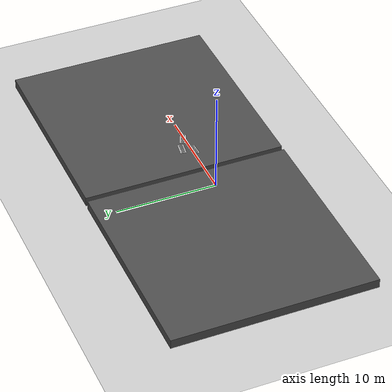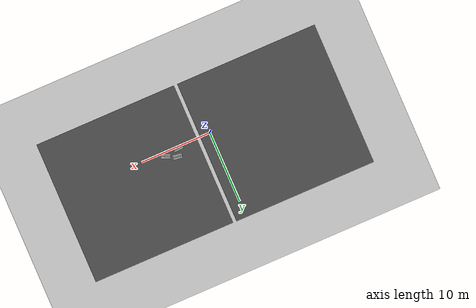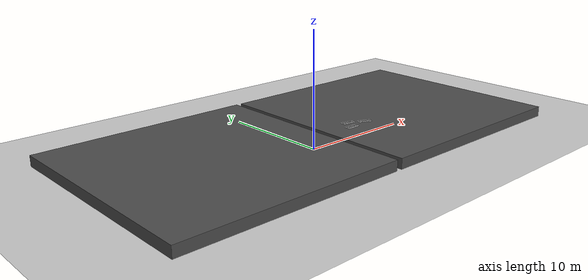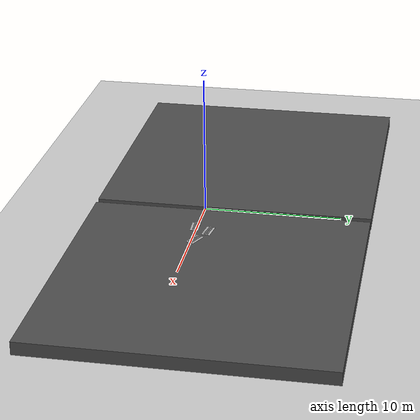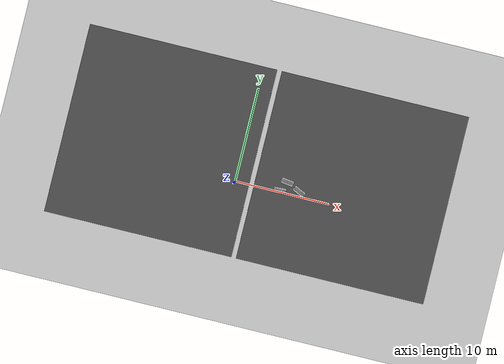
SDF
<sdf version="1.6">
 <world name="default">
  <model name="ground_plane">
   <static>1</static>
   <link name="link">
    <collision name="collision">
     <geometry><plane><normal>0 0 1</normal><size>100 100</size></plane></geometry>
     <surface><friction><ode><mu>100</mu><mu2>50</mu2></ode></friction></surface>
    </collision>
    <visual name="visual">
     <cast_shadows>0</cast_shadows>
     <geometry><plane><normal>0 0 1</normal><size>100 100</size></plane></geometry>
     <material>
      <script><uri>file://media/materials/scripts/gazebo.material</uri><name>Gazebo/Grey</name></script>
     </material>
    </visual>
   </link>
  </model>
  <model name="asphalt_plane">
   <static>1</static>
   <link name="link">
    <collision name="collision">
     <geometry><box><size>20 20 1.4296</size></box></geometry>
     <surface><friction><ode><mu>100</mu><mu2>50</mu2></ode></friction></surface>
    </collision>
    <visual name="visual">
     <cast_shadows>0</cast_shadows>
     <geometry><box><size>20 20 1.4296</size></box></geometry>
     <material>
      <script>
       <uri>model://asphalt_plane/materials/scripts</uri>
       <uri>model://asphalt_plane/materials/textures</uri>
       <name>vrc/asphalt</name>
      </script>
     </material>
    </visual>
   </link>
   <pose>-8.53833 2.29833 0.165376 0 -0 0</pose>
  </model>
  <model name="asphalt_plane_clone">
   <static>1</static>
   <link name="link">
    <collision name="collision">
     <geometry><box><size>20 20 1.06472</size></box></geometry>
     <surface><friction><ode><mu>100</mu><mu2>50</mu2></ode></friction></surface>
    </collision>
    <visual name="visual">
     <cast_shadows>0</cast_shadows>
     <geometry><box><size>20 20 1.06472</size></box></geometry>
     <material>
      <script>
       <uri>model://asphalt_plane/materials/scripts</uri>
       <uri>model://asphalt_plane/materials/textures</uri>
       <name>vrc/asphalt</name>
      </script>
     </material>
    </visual>
   </link>
   <pose>11.9689 2.28539 0.340279 0 -0 0</pose>
  </model>
  <model name="frc2016_roughterrain_1_clone_14">
   <static>0</static>
   <link name="link">
    <visual name="platform">
     <pose>0 0 0.08269 0 -0 0</pose>
     <geometry><box><size>1.27 0.5969 0.003175</size></box></geometry>
    </visual>
    <collision name="platform">
     <pose>0 0 0.08269 0 -0 0</pose>
     <geometry><box><size>1.27 0.5969 0.003175</size></box></geometry>
    </collision>
    <visual name="row1_block1_sm">
     <pose>0.51435 0.1143 0.09698 0 -0 0</pose>
     <geometry><box><size>0.0762 0.0762 0.0254</size></box></geometry>
    </visual>
    <collision name="row1_block1_sm">
     <pose>0.51435 0.1143 0.09698 0 -0 0</pose>
     <geometry><box><size>0.0762 0.0762 0.0254</size></box></geometry>
    </collision>
    <visual name="row1_block2_lg">
     <pose>0.40005 0.1143 0.12238 0 -0 0</pose>
     <geometry><box><size>0.0762 0.0762 0.0762</size></box></geometry>
    </visual>
    <collision name="row1_block2_lg">
     <pose>0.40005 0.1143 0.12238 0 -0 0</pose>
     <geometry><box><size>0.0762 0.0762 0.0762</size></box></geometry>
    </collision>
    <visual name="row1_block3_md">
     <pose>0.28575 0.1143 0.10968 0 -0 0</pose>
     <geometry><box><size>0.0762 0.0762 0.0508</size></box></geometry>
    </visual>
    <collision name="row1_block3_md">
     <pose>0.28575 0.1143 0.10968 0 -0 0</pose>
     <geometry><box><size>0.0762 0.0762 0.0508</size></box></geometry>
    </collision>
    <visual name="row1_block4_sm">
     <pose>0.17145 0.1143 0.09698 0 -0 0</pose>
     <geometry><box><size>0.0762 0.0762 0.0254</size></box></geometry>
    </visual>
    <collision name="row1_block4_sm">
     <pose>0.17145 0.1143 0.09698 0 -0 0</pose>
     <geometry><box><size>0.0762 0.0762 0.0254</size></box></geometry>
    </collision>
    <visual name="row1_block5_md">
     <pose>0.05715 0.1143 0.10968 0 -0 0</pose>
     <geometry><box><size>0.0762 0.0762 0.0508</size></box></geometry>
    </visual>
    <collision name="row1_block5_md">
     <pose>0.05715 0.1143 0.10968 0 -0 0</pose>
     <geometry><box><size>0.0762 0.0762 0.0508</size></box></geometry>
    </collision>
    <visual name="row1_block6_lg">
     <pose>-0.05715 0.1143 0.12238 0 -0 0</pose>
     <geometry><box><size>0.0762 0.0762 0.0762</size></box></geometry>
    </visual>
    <collision name="row1_block6_lg">
     <pose>-0.05715 0.1143 0.12238 0 -0 0</pose>
     <geometry><box><size>0.0762 0.0762 0.0762</size></box></geometry>
    </collision>
    <visual name="row1_block7_sm">
     <pose>-0.17145 0.1143 0.09698 0 -0 0</pose>
     <geometry><box><size>0.0762 0.0762 0.0254</size></box></geometry>
    </visual>
    <collision name="row1_block7_sm">
     <pose>-0.17145 0.1143 0.09698 0 -0 0</pose>
     <geometry><box><size>0.0762 0.0762 0.0254</size></box></geometry>
    </collision>
    <visual name="row1_block8_sm">
     <pose>-0.28575 0.1143 0.09698 0 -0 0</pose>
     <geometry><box><size>0.0762 0.0762 0.0254</size></box></geometry>
    </visual>
    <collision name="row1_block8_sm">
     <pose>-0.28575 0.1143 0.09698 0 -0 0</pose>
     <geometry><box><size>0.0762 0.0762 0.0254</size></box></geometry>
    </collision>
    <visual name="row1_block9_md">
     <pose>-0.40005 0.1143 0.10968 0 -0 0</pose>
     <geometry><box><size>0.0762 0.0762 0.0508</size></box></geometry>
    </visual>
    <collision name="row1_block9_md">
     <pose>-0.40005 0.1143 0.10968 0 -0 0</pose>
     <geometry><box><size>0.0762 0.0762 0.0508</size></box></geometry>
    </collision>
    <visual name="row1_block10_lg">
     <pose>-0.51435 0.1143 0.12238 0 -0 0</pose>
     <geometry><box><size>0.0762 0.0762 0.0762</size></box></geometry>
    </visual>
    <collision name="row1_block10_lg">
     <pose>-0.51435 0.1143 0.12238 0 -0 0</pose>
     <geometry><box><size>0.0762 0.0762 0.0762</size></box></geometry>
    </collision>
    <visual name="row2_block1_md">
     <pose>0.5715 0 0.10968 0 -0 0</pose>
     <geometry><box><size>0.0762 0.0762 0.0508</size></box></geometry>
    </visual>
    <collision name="row2_block1_md">
     <pose>0.5715 0 0.10968 0 -0 0</pose>
     <geometry><box><size>0.0762 0.0762 0.0508</size></box></geometry>
    </collision>
    <visual name="row2_block2_sm">
     <pose>0.4572 0 0.09698 0 -0 0</pose>
     <geometry><box><size>0.0762 0.0762 0.0254</size></box></geometry>
    </visual>
    <collision name="row2_block2_sm">
     <pose>0.4572 0 0.09698 0 -0 0</pose>
     <geometry><box><size>0.0762 0.0762 0.0254</size></box></geometry>
    </collision>
    <visual name="row2_block3_lg">
     <pose>0.3429 0 0.12238 0 -0 0</pose>
     <geometry><box><size>0.0762 0.0762 0.0762</size></box></geometry>
    </visual>
    <collision name="row2_block3_lg">
     <pose>0.3429 0 0.12238 0 -0 0</pose>
     <geometry><box><size>0.0762 0.0762 0.0762</size></box></geometry>
    </collision>
    <visual name="row2_block4_md">
     <pose>0.2286 0 0.10968 0 -0 0</pose>
     <geometry><box><size>0.0762 0.0762 0.0508</size></box></geometry>
    </visual>
    <collision name="row2_block4_md">
     <pose>0.2286 0 0.10968 0 -0 0</pose>
     <geometry><box><size>0.0762 0.0762 0.0508</size></box></geometry>
    </collision>
    <visual name="row2_block5_lg">
     <pose>0.1143 0 0.12238 0 -0 0</pose>
     <geometry><box><size>0.0762 0.0762 0.0762</size></box></geometry>
    </visual>
    <collision name="row2_block5_lg">
     <pose>0.1143 0 0.12238 0 -0 0</pose>
     <geometry><box><size>0.0762 0.0762 0.0762</size></box></geometry>
    </collision>
    <visual name="row2_block6_sm">
     <pose>0 0 0.09698 0 -0 0</pose>
     <geometry><box><size>0.0762 0.0762 0.0254</size></box></geometry>
    </visual>
    <collision name="row2_block6_sm">
     <pose>0 0 0.09698 0 -0 0</pose>
     <geometry><box><size>0.0762 0.0762 0.0254</size></box></geometry>
    </collision>
    <visual name="row2_block7_md">
     <pose>-0.1143 0 0.10968 0 -0 0</pose>
     <geometry><box><size>0.0762 0.0762 0.0508</size></box></geometry>
    </visual>
    <collision name="row2_block7_md">
     <pose>-0.1143 0 0.10968 0 -0 0</pose>
     <geometry><box><size>0.0762 0.0762 0.0508</size></box></geometry>
    </collision>
    <visual name="row2_block8_lg">
     <pose>-0.2286 0 0.12238 0 -0 0</pose>
     <geometry><box><size>0.0762 0.0762 0.0762</size></box></geometry>
    </visual>
    <collision name="row2_block8_lg">
     <pose>-0.2286 0 0.12238 0 -0 0</pose>
     <geometry><box><size>0.0762 0.0762 0.0762</size></box></geometry>
    </collision>
    <visual name="row2_block9_sm">
     <pose>-0.3429 0 0.09698 0 -0 0</pose>
     <geometry><box><size>0.0762 0.0762 0.0254</size></box></geometry>
    </visual>
    <collision name="row2_block9_sm">
     <pose>-0.3429 0 0.09698 0 -0 0</pose>
     <geometry><box><size>0.0762 0.0762 0.0254</size></box></geometry>
    </collision>
    <visual name="row2_block10_lg">
     <pose>-0.4572 0 0.12238 0 -0 0</pose>
     <geometry><box><size>0.0762 0.0762 0.0762</size></box></geometry>
    </visual>
    <collision name="row2_block10_lg">
     <pose>-0.4572 0 0.12238 0 -0 0</pose>
     <geometry><box><size>0.0762 0.0762 0.0762</size></box></geometry>
    </collision>
    <visual name="row2_block11_md">
     <pose>-0.5715 0 0.10968 0 -0 0</pose>
     <geometry><box><size>0.0762 0.0762 0.0508</size></box></geometry>
    </visual>
    <collision name="row2_block11_md">
     <pose>-0.5715 0 0.10968 0 -0 0</pose>
     <geometry><box><size>0.0762 0.0762 0.0508</size></box></geometry>
    </collision>
    <visual name="row3_block1_lg">
     <pose>0.51435 -0.1143 0.12238 0 -0 0</pose>
     <geometry><box><size>0.0762 0.0762 0.0762</size></box></geometry>
    </visual>
    <collision name="row3_block1_lg">
     <pose>0.51435 -0.1143 0.12238 0 -0 0</pose>
     <geometry><box><size>0.0762 0.0762 0.0762</size></box></geometry>
    </collision>
    <visual name="row3_block2_md">
     <pose>0.40005 -0.1143 0.10968 0 -0 0</pose>
     <geometry><box><size>0.0762 0.0762 0.0508</size></box></geometry>
    </visual>
    <collision name="row3_block2_md">
     <pose>0.40005 -0.1143 0.10968 0 -0 0</pose>
     <geometry><box><size>0.0762 0.0762 0.0508</size></box></geometry>
    </collision>
    <visual name="row3_block3_lg">
     <pose>0.28575 -0.1143 0.12238 0 -0 0</pose>
     <geometry><box><size>0.0762 0.0762 0.0762</size></box></geometry>
    </visual>
    <collision name="row3_block3_lg">
     <pose>0.28575 -0.1143 0.12238 0 -0 0</pose>
     <geometry><box><size>0.0762 0.0762 0.0762</size></box></geometry>
    </collision>
    <visual name="row3_block4_sm">
     <pose>0.17145 -0.1143 0.09698 0 -0 0</pose>
     <geometry><box><size>0.0762 0.0762 0.0254</size></box></geometry>
    </visual>
    <collision name="row3_block4_sm">
     <pose>0.17145 -0.1143 0.09698 0 -0 0</pose>
     <geometry><box><size>0.0762 0.0762 0.0254</size></box></geometry>
    </collision>
    <visual name="row3_block5_md">
     <pose>0.05715 -0.1143 0.10968 0 -0 0</pose>
     <geometry><box><size>0.0762 0.0762 0.0508</size></box></geometry>
    </visual>
    <collision name="row3_block5_md">
     <pose>0.05715 -0.1143 0.10968 0 -0 0</pose>
     <geometry><box><size>0.0762 0.0762 0.0508</size></box></geometry>
    </collision>
    <visual name="row3_block6_md">
     <pose>-0.05715 -0.1143 0.10968 0 -0 0</pose>
     <geometry><box><size>0.0762 0.0762 0.0508</size></box></geometry>
    </visual>
    <collision name="row3_block6_md">
     <pose>-0.05715 -0.1143 0.10968 0 -0 0</pose>
     <geometry><box><size>0.0762 0.0762 0.0508</size></box></geometry>
    </collision>
    <visual name="row3_block7_lg">
     <pose>-0.17145 -0.1143 0.12238 0 -0 0</pose>
     <geometry><box><size>0.0762 0.0762 0.0762</size></box></geometry>
    </visual>
    <collision name="row3_block7_lg">
     <pose>-0.17145 -0.1143 0.12238 0 -0 0</pose>
     <geometry><box><size>0.0762 0.0762 0.0762</size></box></geometry>
    </collision>
    <visual name="row3_block8_sm">
     <pose>-0.28575 -0.1143 0.09698 0 -0 0</pose>
     <geometry><box><size>0.0762 0.0762 0.0254</size></box></geometry>
    </visual>
    <collision name="row3_block8_sm">
     <pose>-0.28575 -0.1143 0.09698 0 -0 0</pose>
     <geometry><box><size>0.0762 0.0762 0.0254</size></box></geometry>
    </collision>
    <visual name="row3_block9_md">
     <pose>-0.40005 -0.1143 0.10968 0 -0 0</pose>
     <geometry><box><size>0.0762 0.0762 0.0508</size></box></geometry>
    </visual>
    <collision name="row3_block9_md">
     <pose>-0.40005 -0.1143 0.10968 0 -0 0</pose>
     <geometry><box><size>0.0762 0.0762 0.0508</size></box></geometry>
    </collision>
    <visual name="row3_block10_sm">
     <pose>-0.51435 -0.1143 0.09698 0 -0 0</pose>
     <geometry><box><size>0.0762 0.0762 0.0254</size></box></geometry>
    </visual>
    <collision name="row3_block10_sm">
     <pose>-0.51435 -0.1143 0.09698 0 -0 0</pose>
     <geometry><box><size>0.0762 0.0762 0.0254</size></box></geometry>
    </collision>
    <inertial>
     <inertia><ixx>1</ixx><ixy>0</ixy><ixz>0</ixz><iyy>1</iyy><iyz>0</iyz><izz>1</izz></inertia>
     <mass>1</mass>
    </inertial>
   </link>
   <pose>4.73917 0.205967 0.793078 0.005194 -0 0.033962</pose>
  </model>
  <model name="frc2016_roughterrain_1_clone_11_clone_6">
   <static>0</static>
   <link name="link">
    <visual name="platform">
     <pose>0 0 0.08269 0 -0 0</pose>
     <geometry><box><size>1.27 0.5969 0.003175</size></box></geometry>
    </visual>
    <collision name="platform">
     <pose>0 0 0.08269 0 -0 0</pose>
     <geometry><box><size>1.27 0.5969 0.003175</size></box></geometry>
    </collision>
    <visual name="row1_block1_sm">
     <pose>0.51435 0.1143 0.09698 0 -0 0</pose>
     <geometry><box><size>0.0762 0.0762 0.0254</size></box></geometry>
    </visual>
    <collision name="row1_block1_sm">
     <pose>0.51435 0.1143 0.09698 0 -0 0</pose>
     <geometry><box><size>0.0762 0.0762 0.0254</size></box></geometry>
    </collision>
    <visual name="row1_block2_lg">
     <pose>0.40005 0.1143 0.12238 0 -0 0</pose>
     <geometry><box><size>0.0762 0.0762 0.0762</size></box></geometry>
    </visual>
    <collision name="row1_block2_lg">
     <pose>0.40005 0.1143 0.12238 0 -0 0</pose>
     <geometry><box><size>0.0762 0.0762 0.0762</size></box></geometry>
    </collision>
    <visual name="row1_block3_md">
     <pose>0.28575 0.1143 0.10968 0 -0 0</pose>
     <geometry><box><size>0.0762 0.0762 0.0508</size></box></geometry>
    </visual>
    <collision name="row1_block3_md">
     <pose>0.28575 0.1143 0.10968 0 -0 0</pose>
     <geometry><box><size>0.0762 0.0762 0.0508</size></box></geometry>
    </collision>
    <visual name="row1_block4_sm">
     <pose>0.17145 0.1143 0.09698 0 -0 0</pose>
     <geometry><box><size>0.0762 0.0762 0.0254</size></box></geometry>
    </visual>
    <collision name="row1_block4_sm">
     <pose>0.17145 0.1143 0.09698 0 -0 0</pose>
     <geometry><box><size>0.0762 0.0762 0.0254</size></box></geometry>
    </collision>
    <visual name="row1_block5_md">
     <pose>0.05715 0.1143 0.10968 0 -0 0</pose>
     <geometry><box><size>0.0762 0.0762 0.0508</size></box></geometry>
    </visual>
    <collision name="row1_block5_md">
     <pose>0.05715 0.1143 0.10968 0 -0 0</pose>
     <geometry><box><size>0.0762 0.0762 0.0508</size></box></geometry>
    </collision>
    <visual name="row1_block6_lg">
     <pose>-0.05715 0.1143 0.12238 0 -0 0</pose>
     <geometry><box><size>0.0762 0.0762 0.0762</size></box></geometry>
    </visual>
    <collision name="row1_block6_lg">
     <pose>-0.05715 0.1143 0.12238 0 -0 0</pose>
     <geometry><box><size>0.0762 0.0762 0.0762</size></box></geometry>
    </collision>
    <visual name="row1_block7_sm">
     <pose>-0.17145 0.1143 0.09698 0 -0 0</pose>
     <geometry><box><size>0.0762 0.0762 0.0254</size></box></geometry>
    </visual>
    <collision name="row1_block7_sm">
     <pose>-0.17145 0.1143 0.09698 0 -0 0</pose>
     <geometry><box><size>0.0762 0.0762 0.0254</size></box></geometry>
    </collision>
    <visual name="row1_block8_sm">
     <pose>-0.28575 0.1143 0.09698 0 -0 0</pose>
     <geometry><box><size>0.0762 0.0762 0.0254</size></box></geometry>
    </visual>
    <collision name="row1_block8_sm">
     <pose>-0.28575 0.1143 0.09698 0 -0 0</pose>
     <geometry><box><size>0.0762 0.0762 0.0254</size></box></geometry>
    </collision>
    <visual name="row1_block9_md">
     <pose>-0.40005 0.1143 0.10968 0 -0 0</pose>
     <geometry><box><size>0.0762 0.0762 0.0508</size></box></geometry>
    </visual>
    <collision name="row1_block9_md">
     <pose>-0.40005 0.1143 0.10968 0 -0 0</pose>
     <geometry><box><size>0.0762 0.0762 0.0508</size></box></geometry>
    </collision>
    <visual name="row1_block10_lg">
     <pose>-0.51435 0.1143 0.12238 0 -0 0</pose>
     <geometry><box><size>0.0762 0.0762 0.0762</size></box></geometry>
    </visual>
    <collision name="row1_block10_lg">
     <pose>-0.51435 0.1143 0.12238 0 -0 0</pose>
     <geometry><box><size>0.0762 0.0762 0.0762</size></box></geometry>
    </collision>
    <visual name="row2_block1_md">
     <pose>0.5715 0 0.10968 0 -0 0</pose>
     <geometry><box><size>0.0762 0.0762 0.0508</size></box></geometry>
    </visual>
    <collision name="row2_block1_md">
     <pose>0.5715 0 0.10968 0 -0 0</pose>
     <geometry><box><size>0.0762 0.0762 0.0508</size></box></geometry>
    </collision>
    <visual name="row2_block2_sm">
     <pose>0.4572 0 0.09698 0 -0 0</pose>
     <geometry><box><size>0.0762 0.0762 0.0254</size></box></geometry>
    </visual>
    <collision name="row2_block2_sm">
     <pose>0.4572 0 0.09698 0 -0 0</pose>
     <geometry><box><size>0.0762 0.0762 0.0254</size></box></geometry>
    </collision>
    <visual name="row2_block3_lg">
     <pose>0.3429 0 0.12238 0 -0 0</pose>
     <geometry><box><size>0.0762 0.0762 0.0762</size></box></geometry>
    </visual>
    <collision name="row2_block3_lg">
     <pose>0.3429 0 0.12238 0 -0 0</pose>
     <geometry><box><size>0.0762 0.0762 0.0762</size></box></geometry>
    </collision>
    <visual name="row2_block4_md">
     <pose>0.2286 0 0.10968 0 -0 0</pose>
     <geometry><box><size>0.0762 0.0762 0.0508</size></box></geometry>
    </visual>
    <collision name="row2_block4_md">
     <pose>0.2286 0 0.10968 0 -0 0</pose>
     <geometry><box><size>0.0762 0.0762 0.0508</size></box></geometry>
    </collision>
    <visual name="row2_block5_lg">
     <pose>0.1143 0 0.12238 0 -0 0</pose>
     <geometry><box><size>0.0762 0.0762 0.0762</size></box></geometry>
    </visual>
    <collision name="row2_block5_lg">
     <pose>0.1143 0 0.12238 0 -0 0</pose>
     <geometry><box><size>0.0762 0.0762 0.0762</size></box></geometry>
    </collision>
    <visual name="row2_block6_sm">
     <pose>0 0 0.09698 0 -0 0</pose>
     <geometry><box><size>0.0762 0.0762 0.0254</size></box></geometry>
    </visual>
    <collision name="row2_block6_sm">
     <pose>0 0 0.09698 0 -0 0</pose>
     <geometry><box><size>0.0762 0.0762 0.0254</size></box></geometry>
    </collision>
    <visual name="row2_block7_md">
     <pose>-0.1143 0 0.10968 0 -0 0</pose>
     <geometry><box><size>0.0762 0.0762 0.0508</size></box></geometry>
    </visual>
    <collision name="row2_block7_md">
     <pose>-0.1143 0 0.10968 0 -0 0</pose>
     <geometry><box><size>0.0762 0.0762 0.0508</size></box></geometry>
    </collision>
    <visual name="row2_block8_lg">
     <pose>-0.2286 0 0.12238 0 -0 0</pose>
     <geometry><box><size>0.0762 0.0762 0.0762</size></box></geometry>
    </visual>
    <collision name="row2_block8_lg">
     <pose>-0.2286 0 0.12238 0 -0 0</pose>
     <geometry><box><size>0.0762 0.0762 0.0762</size></box></geometry>
    </collision>
    <visual name="row2_block9_sm">
     <pose>-0.3429 0 0.09698 0 -0 0</pose>
     <geometry><box><size>0.0762 0.0762 0.0254</size></box></geometry>
    </visual>
    <collision name="row2_block9_sm">
     <pose>-0.3429 0 0.09698 0 -0 0</pose>
     <geometry><box><size>0.0762 0.0762 0.0254</size></box></geometry>
    </collision>
    <visual name="row2_block10_lg">
     <pose>-0.4572 0 0.12238 0 -0 0</pose>
     <geometry><box><size>0.0762 0.0762 0.0762</size></box></geometry>
    </visual>
    <collision name="row2_block10_lg">
     <pose>-0.4572 0 0.12238 0 -0 0</pose>
     <geometry><box><size>0.0762 0.0762 0.0762</size></box></geometry>
    </collision>
    <visual name="row2_block11_md">
     <pose>-0.5715 0 0.10968 0 -0 0</pose>
     <geometry><box><size>0.0762 0.0762 0.0508</size></box></geometry>
    </visual>
    <collision name="row2_block11_md">
     <pose>-0.5715 0 0.10968 0 -0 0</pose>
     <geometry><box><size>0.0762 0.0762 0.0508</size></box></geometry>
    </collision>
    <visual name="row3_block1_lg">
     <pose>0.51435 -0.1143 0.12238 0 -0 0</pose>
     <geometry><box><size>0.0762 0.0762 0.0762</size></box></geometry>
    </visual>
    <collision name="row3_block1_lg">
     <pose>0.51435 -0.1143 0.12238 0 -0 0</pose>
     <geometry><box><size>0.0762 0.0762 0.0762</size></box></geometry>
    </collision>
    <visual name="row3_block2_md">
     <pose>0.40005 -0.1143 0.10968 0 -0 0</pose>
     <geometry><box><size>0.0762 0.0762 0.0508</size></box></geometry>
    </visual>
    <collision name="row3_block2_md">
     <pose>0.40005 -0.1143 0.10968 0 -0 0</pose>
     <geometry><box><size>0.0762 0.0762 0.0508</size></box></geometry>
    </collision>
    <visual name="row3_block3_lg">
     <pose>0.28575 -0.1143 0.12238 0 -0 0</pose>
     <geometry><box><size>0.0762 0.0762 0.0762</size></box></geometry>
    </visual>
    <collision name="row3_block3_lg">
     <pose>0.28575 -0.1143 0.12238 0 -0 0</pose>
     <geometry><box><size>0.0762 0.0762 0.0762</size></box></geometry>
    </collision>
    <visual name="row3_block4_sm">
     <pose>0.17145 -0.1143 0.09698 0 -0 0</pose>
     <geometry><box><size>0.0762 0.0762 0.0254</size></box></geometry>
    </visual>
    <collision name="row3_block4_sm">
     <pose>0.17145 -0.1143 0.09698 0 -0 0</pose>
     <geometry><box><size>0.0762 0.0762 0.0254</size></box></geometry>
    </collision>
    <visual name="row3_block5_md">
     <pose>0.05715 -0.1143 0.10968 0 -0 0</pose>
     <geometry><box><size>0.0762 0.0762 0.0508</size></box></geometry>
    </visual>
    <collision name="row3_block5_md">
     <pose>0.05715 -0.1143 0.10968 0 -0 0</pose>
     <geometry><box><size>0.0762 0.0762 0.0508</size></box></geometry>
    </collision>
    <visual name="row3_block6_md">
     <pose>-0.05715 -0.1143 0.10968 0 -0 0</pose>
     <geometry><box><size>0.0762 0.0762 0.0508</size></box></geometry>
    </visual>
    <collision name="row3_block6_md">
     <pose>-0.05715 -0.1143 0.10968 0 -0 0</pose>
     <geometry><box><size>0.0762 0.0762 0.0508</size></box></geometry>
    </collision>
    <visual name="row3_block7_lg">
     <pose>-0.17145 -0.1143 0.12238 0 -0 0</pose>
     <geometry><box><size>0.0762 0.0762 0.0762</size></box></geometry>
    </visual>
    <collision name="row3_block7_lg">
     <pose>-0.17145 -0.1143 0.12238 0 -0 0</pose>
     <geometry><box><size>0.0762 0.0762 0.0762</size></box></geometry>
    </collision>
    <visual name="row3_block8_sm">
     <pose>-0.28575 -0.1143 0.09698 0 -0 0</pose>
     <geometry><box><size>0.0762 0.0762 0.0254</size></box></geometry>
    </visual>
    <collision name="row3_block8_sm">
     <pose>-0.28575 -0.1143 0.09698 0 -0 0</pose>
     <geometry><box><size>0.0762 0.0762 0.0254</size></box></geometry>
    </collision>
    <visual name="row3_block9_md">
     <pose>-0.40005 -0.1143 0.10968 0 -0 0</pose>
     <geometry><box><size>0.0762 0.0762 0.0508</size></box></geometry>
    </visual>
    <collision name="row3_block9_md">
     <pose>-0.40005 -0.1143 0.10968 0 -0 0</pose>
     <geometry><box><size>0.0762 0.0762 0.0508</size></box></geometry>
    </collision>
    <visual name="row3_block10_sm">
     <pose>-0.51435 -0.1143 0.09698 0 -0 0</pose>
     <geometry><box><size>0.0762 0.0762 0.0254</size></box></geometry>
    </visual>
    <collision name="row3_block10_sm">
     <pose>-0.51435 -0.1143 0.09698 0 -0 0</pose>
     <geometry><box><size>0.0762 0.0762 0.0254</size></box></geometry>
    </collision>
    <inertial>
     <inertia><ixx>1</ixx><ixy>0</ixy><ixz>0</ixz><iyy>1</iyy><iyz>0</iyz><izz>1</izz></inertia>
     <mass>1</mass>
    </inertial>
   </link>
   <pose>6.69771 0.560235 0.791536 2e-06 0 -0.444939</pose>
  </model>
  <model name="frc2016_roughterrain_1_clone_11_clone_8">
   <static>0</static>
   <link name="link">
    <visual name="platform">
     <pose>0 0 0.08269 0 -0 0</pose>
     <geometry><box><size>1.27 0.5969 0.003175</size></box></geometry>
    </visual>
    <collision name="platform">
     <pose>0 0 0.08269 0 -0 0</pose>
     <geometry><box><size>1.27 0.5969 0.003175</size></box></geometry>
    </collision>
    <visual name="row1_block1_sm">
     <pose>0.51435 0.1143 0.09698 0 -0 0</pose>
     <geometry><box><size>0.0762 0.0762 0.0254</size></box></geometry>
    </visual>
    <collision name="row1_block1_sm">
     <pose>0.51435 0.1143 0.09698 0 -0 0</pose>
     <geometry><box><size>0.0762 0.0762 0.0254</size></box></geometry>
    </collision>
    <visual name="row1_block2_lg">
     <pose>0.40005 0.1143 0.12238 0 -0 0</pose>
     <geometry><box><size>0.0762 0.0762 0.0762</size></box></geometry>
    </visual>
    <collision name="row1_block2_lg">
     <pose>0.40005 0.1143 0.12238 0 -0 0</pose>
     <geometry><box><size>0.0762 0.0762 0.0762</size></box></geometry>
    </collision>
    <visual name="row1_block3_md">
     <pose>0.28575 0.1143 0.10968 0 -0 0</pose>
     <geometry><box><size>0.0762 0.0762 0.0508</size></box></geometry>
    </visual>
    <collision name="row1_block3_md">
     <pose>0.28575 0.1143 0.10968 0 -0 0</pose>
     <geometry><box><size>0.0762 0.0762 0.0508</size></box></geometry>
    </collision>
    <visual name="row1_block4_sm">
     <pose>0.17145 0.1143 0.09698 0 -0 0</pose>
     <geometry><box><size>0.0762 0.0762 0.0254</size></box></geometry>
    </visual>
    <collision name="row1_block4_sm">
     <pose>0.17145 0.1143 0.09698 0 -0 0</pose>
     <geometry><box><size>0.0762 0.0762 0.0254</size></box></geometry>
    </collision>
    <visual name="row1_block5_md">
     <pose>0.05715 0.1143 0.10968 0 -0 0</pose>
     <geometry><box><size>0.0762 0.0762 0.0508</size></box></geometry>
    </visual>
    <collision name="row1_block5_md">
     <pose>0.05715 0.1143 0.10968 0 -0 0</pose>
     <geometry><box><size>0.0762 0.0762 0.0508</size></box></geometry>
    </collision>
    <visual name="row1_block6_lg">
     <pose>-0.05715 0.1143 0.12238 0 -0 0</pose>
     <geometry><box><size>0.0762 0.0762 0.0762</size></box></geometry>
    </visual>
    <collision name="row1_block6_lg">
     <pose>-0.05715 0.1143 0.12238 0 -0 0</pose>
     <geometry><box><size>0.0762 0.0762 0.0762</size></box></geometry>
    </collision>
    <visual name="row1_block7_sm">
     <pose>-0.17145 0.1143 0.09698 0 -0 0</pose>
     <geometry><box><size>0.0762 0.0762 0.0254</size></box></geometry>
    </visual>
    <collision name="row1_block7_sm">
     <pose>-0.17145 0.1143 0.09698 0 -0 0</pose>
     <geometry><box><size>0.0762 0.0762 0.0254</size></box></geometry>
    </collision>
    <visual name="row1_block8_sm">
     <pose>-0.28575 0.1143 0.09698 0 -0 0</pose>
     <geometry><box><size>0.0762 0.0762 0.0254</size></box></geometry>
    </visual>
    <collision name="row1_block8_sm">
     <pose>-0.28575 0.1143 0.09698 0 -0 0</pose>
     <geometry><box><size>0.0762 0.0762 0.0254</size></box></geometry>
    </collision>
    <visual name="row1_block9_md">
     <pose>-0.40005 0.1143 0.10968 0 -0 0</pose>
     <geometry><box><size>0.0762 0.0762 0.0508</size></box></geometry>
    </visual>
    <collision name="row1_block9_md">
     <pose>-0.40005 0.1143 0.10968 0 -0 0</pose>
     <geometry><box><size>0.0762 0.0762 0.0508</size></box></geometry>
    </collision>
    <visual name="row1_block10_lg">
     <pose>-0.51435 0.1143 0.12238 0 -0 0</pose>
     <geometry><box><size>0.0762 0.0762 0.0762</size></box></geometry>
    </visual>
    <collision name="row1_block10_lg">
     <pose>-0.51435 0.1143 0.12238 0 -0 0</pose>
     <geometry><box><size>0.0762 0.0762 0.0762</size></box></geometry>
    </collision>
    <visual name="row2_block1_md">
     <pose>0.5715 0 0.10968 0 -0 0</pose>
     <geometry><box><size>0.0762 0.0762 0.0508</size></box></geometry>
    </visual>
    <collision name="row2_block1_md">
     <pose>0.5715 0 0.10968 0 -0 0</pose>
     <geometry><box><size>0.0762 0.0762 0.0508</size></box></geometry>
    </collision>
    <visual name="row2_block2_sm">
     <pose>0.4572 0 0.09698 0 -0 0</pose>
     <geometry><box><size>0.0762 0.0762 0.0254</size></box></geometry>
    </visual>
    <collision name="row2_block2_sm">
     <pose>0.4572 0 0.09698 0 -0 0</pose>
     <geometry><box><size>0.0762 0.0762 0.0254</size></box></geometry>
    </collision>
    <visual name="row2_block3_lg">
     <pose>0.3429 0 0.12238 0 -0 0</pose>
     <geometry><box><size>0.0762 0.0762 0.0762</size></box></geometry>
    </visual>
    <collision name="row2_block3_lg">
     <pose>0.3429 0 0.12238 0 -0 0</pose>
     <geometry><box><size>0.0762 0.0762 0.0762</size></box></geometry>
    </collision>
    <visual name="row2_block4_md">
     <pose>0.2286 0 0.10968 0 -0 0</pose>
     <geometry><box><size>0.0762 0.0762 0.0508</size></box></geometry>
    </visual>
    <collision name="row2_block4_md">
     <pose>0.2286 0 0.10968 0 -0 0</pose>
     <geometry><box><size>0.0762 0.0762 0.0508</size></box></geometry>
    </collision>
    <visual name="row2_block5_lg">
     <pose>0.1143 0 0.12238 0 -0 0</pose>
     <geometry><box><size>0.0762 0.0762 0.0762</size></box></geometry>
    </visual>
    <collision name="row2_block5_lg">
     <pose>0.1143 0 0.12238 0 -0 0</pose>
     <geometry><box><size>0.0762 0.0762 0.0762</size></box></geometry>
    </collision>
    <visual name="row2_block6_sm">
     <pose>0 0 0.09698 0 -0 0</pose>
     <geometry><box><size>0.0762 0.0762 0.0254</size></box></geometry>
    </visual>
    <collision name="row2_block6_sm">
     <pose>0 0 0.09698 0 -0 0</pose>
     <geometry><box><size>0.0762 0.0762 0.0254</size></box></geometry>
    </collision>
    <visual name="row2_block7_md">
     <pose>-0.1143 0 0.10968 0 -0 0</pose>
     <geometry><box><size>0.0762 0.0762 0.0508</size></box></geometry>
    </visual>
    <collision name="row2_block7_md">
     <pose>-0.1143 0 0.10968 0 -0 0</pose>
     <geometry><box><size>0.0762 0.0762 0.0508</size></box></geometry>
    </collision>
    <visual name="row2_block8_lg">
     <pose>-0.2286 0 0.12238 0 -0 0</pose>
     <geometry><box><size>0.0762 0.0762 0.0762</size></box></geometry>
    </visual>
    <collision name="row2_block8_lg">
     <pose>-0.2286 0 0.12238 0 -0 0</pose>
     <geometry><box><size>0.0762 0.0762 0.0762</size></box></geometry>
    </collision>
    <visual name="row2_block9_sm">
     <pose>-0.3429 0 0.09698 0 -0 0</pose>
     <geometry><box><size>0.0762 0.0762 0.0254</size></box></geometry>
    </visual>
    <collision name="row2_block9_sm">
     <pose>-0.3429 0 0.09698 0 -0 0</pose>
     <geometry><box><size>0.0762 0.0762 0.0254</size></box></geometry>
    </collision>
    <visual name="row2_block10_lg">
     <pose>-0.4572 0 0.12238 0 -0 0</pose>
     <geometry><box><size>0.0762 0.0762 0.0762</size></box></geometry>
    </visual>
    <collision name="row2_block10_lg">
     <pose>-0.4572 0 0.12238 0 -0 0</pose>
     <geometry><box><size>0.0762 0.0762 0.0762</size></box></geometry>
    </collision>
    <visual name="row2_block11_md">
     <pose>-0.5715 0 0.10968 0 -0 0</pose>
     <geometry><box><size>0.0762 0.0762 0.0508</size></box></geometry>
    </visual>
    <collision name="row2_block11_md">
     <pose>-0.5715 0 0.10968 0 -0 0</pose>
     <geometry><box><size>0.0762 0.0762 0.0508</size></box></geometry>
    </collision>
    <visual name="row3_block1_lg">
     <pose>0.51435 -0.1143 0.12238 0 -0 0</pose>
     <geometry><box><size>0.0762 0.0762 0.0762</size></box></geometry>
    </visual>
    <collision name="row3_block1_lg">
     <pose>0.51435 -0.1143 0.12238 0 -0 0</pose>
     <geometry><box><size>0.0762 0.0762 0.0762</size></box></geometry>
    </collision>
    <visual name="row3_block2_md">
     <pose>0.40005 -0.1143 0.10968 0 -0 0</pose>
     <geometry><box><size>0.0762 0.0762 0.0508</size></box></geometry>
    </visual>
    <collision name="row3_block2_md">
     <pose>0.40005 -0.1143 0.10968 0 -0 0</pose>
     <geometry><box><size>0.0762 0.0762 0.0508</size></box></geometry>
    </collision>
    <visual name="row3_block3_lg">
     <pose>0.28575 -0.1143 0.12238 0 -0 0</pose>
     <geometry><box><size>0.0762 0.0762 0.0762</size></box></geometry>
    </visual>
    <collision name="row3_block3_lg">
     <pose>0.28575 -0.1143 0.12238 0 -0 0</pose>
     <geometry><box><size>0.0762 0.0762 0.0762</size></box></geometry>
    </collision>
    <visual name="row3_block4_sm">
     <pose>0.17145 -0.1143 0.09698 0 -0 0</pose>
     <geometry><box><size>0.0762 0.0762 0.0254</size></box></geometry>
    </visual>
    <collision name="row3_block4_sm">
     <pose>0.17145 -0.1143 0.09698 0 -0 0</pose>
     <geometry><box><size>0.0762 0.0762 0.0254</size></box></geometry>
    </collision>
    <visual name="row3_block5_md">
     <pose>0.05715 -0.1143 0.10968 0 -0 0</pose>
     <geometry><box><size>0.0762 0.0762 0.0508</size></box></geometry>
    </visual>
    <collision name="row3_block5_md">
     <pose>0.05715 -0.1143 0.10968 0 -0 0</pose>
     <geometry><box><size>0.0762 0.0762 0.0508</size></box></geometry>
    </collision>
    <visual name="row3_block6_md">
     <pose>-0.05715 -0.1143 0.10968 0 -0 0</pose>
     <geometry><box><size>0.0762 0.0762 0.0508</size></box></geometry>
    </visual>
    <collision name="row3_block6_md">
     <pose>-0.05715 -0.1143 0.10968 0 -0 0</pose>
     <geometry><box><size>0.0762 0.0762 0.0508</size></box></geometry>
    </collision>
    <visual name="row3_block7_lg">
     <pose>-0.17145 -0.1143 0.12238 0 -0 0</pose>
     <geometry><box><size>0.0762 0.0762 0.0762</size></box></geometry>
    </visual>
    <collision name="row3_block7_lg">
     <pose>-0.17145 -0.1143 0.12238 0 -0 0</pose>
     <geometry><box><size>0.0762 0.0762 0.0762</size></box></geometry>
    </collision>
    <visual name="row3_block8_sm">
     <pose>-0.28575 -0.1143 0.09698 0 -0 0</pose>
     <geometry><box><size>0.0762 0.0762 0.0254</size></box></geometry>
    </visual>
    <collision name="row3_block8_sm">
     <pose>-0.28575 -0.1143 0.09698 0 -0 0</pose>
     <geometry><box><size>0.0762 0.0762 0.0254</size></box></geometry>
    </collision>
    <visual name="row3_block9_md">
     <pose>-0.40005 -0.1143 0.10968 0 -0 0</pose>
     <geometry><box><size>0.0762 0.0762 0.0508</size></box></geometry>
    </visual>
    <collision name="row3_block9_md">
     <pose>-0.40005 -0.1143 0.10968 0 -0 0</pose>
     <geometry><box><size>0.0762 0.0762 0.0508</size></box></geometry>
    </collision>
    <visual name="row3_block10_sm">
     <pose>-0.51435 -0.1143 0.09698 0 -0 0</pose>
     <geometry><box><size>0.0762 0.0762 0.0254</size></box></geometry>
    </visual>
    <collision name="row3_block10_sm">
     <pose>-0.51435 -0.1143 0.09698 0 -0 0</pose>
     <geometry><box><size>0.0762 0.0762 0.0254</size></box></geometry>
    </collision>
    <inertial>
     <inertia><ixx>1</ixx><ixy>0</ixy><ixz>0</ixz><iyy>1</iyy><iyz>0</iyz><izz>1</izz></inertia>
     <mass>1</mass>
    </inertial>
   </link>
   <pose>5.28377 1.23825 0.791536 -1e-06 -0 -0.144359</pose>
  </model>
 </world>
</sdf>
